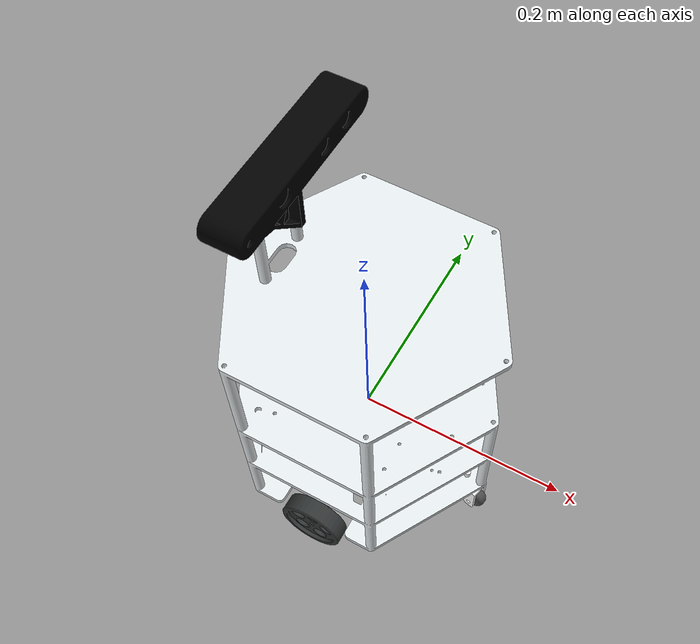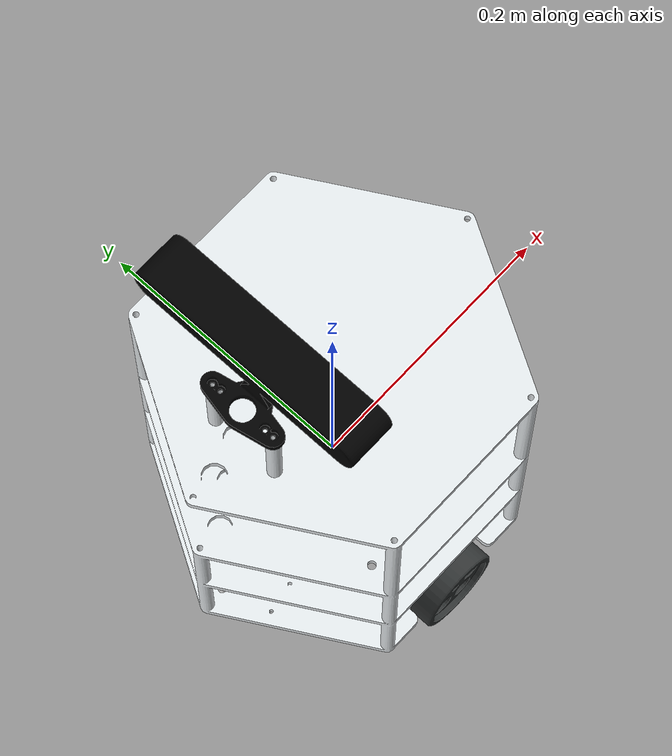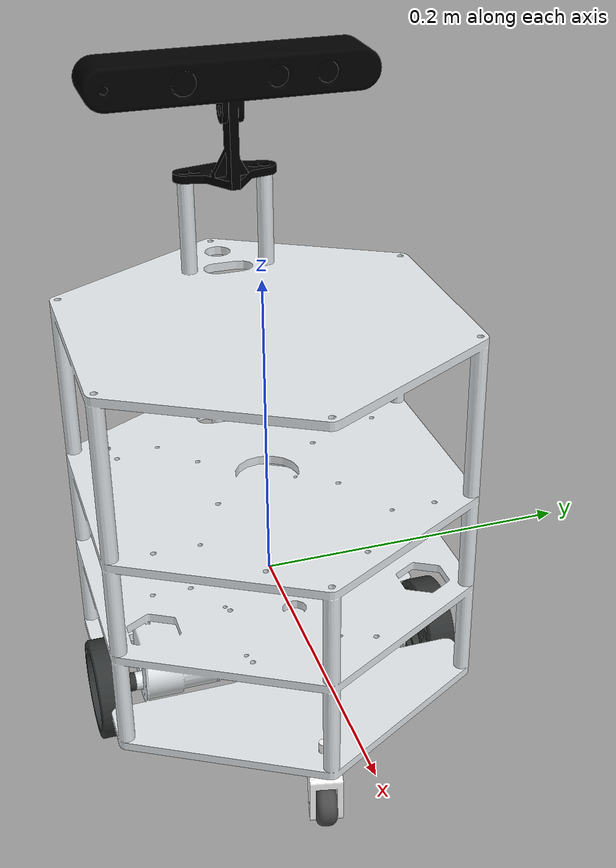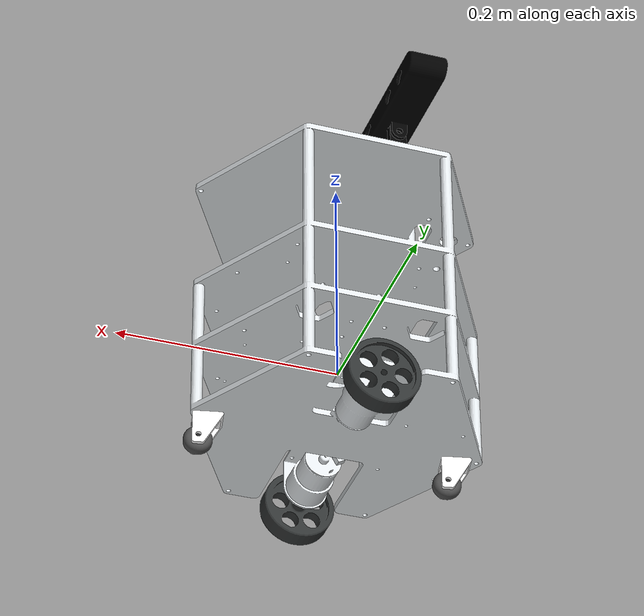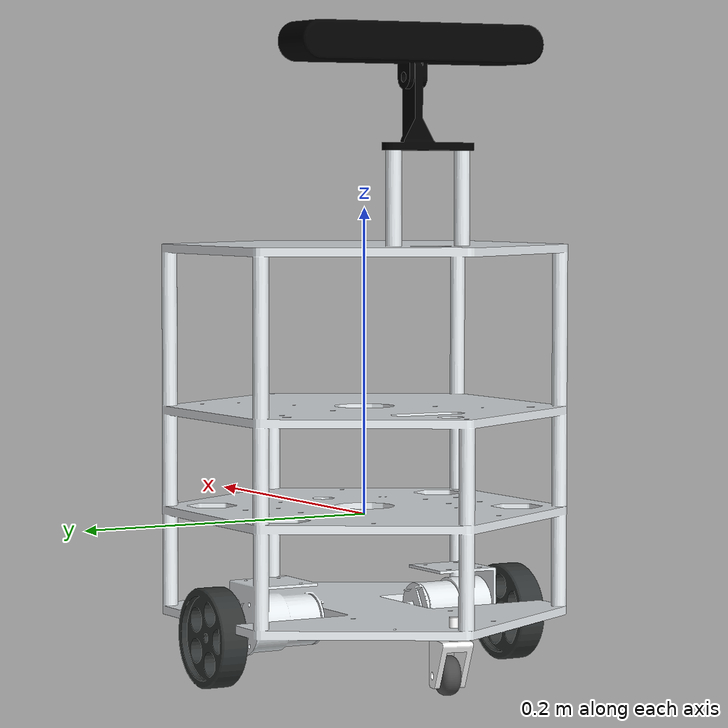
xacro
<?xml version="1.0"?>
<robot name="mrobot_body" xmlns:xacro="http://ros.org/wiki/xacro">

	<link name="base_footprint">
		<visual>
			<origin xyz="0 0 0" rpy="0 0 0" />
			<geometry>
				<box size="0.001 0.001 0.001" />
			</geometry>
			<material name="">
				<color rgba="0 1 1 1" />
			</material>
		</visual>
		<collision>
			<origin xyz="0 0 0" rpy="0 0 0" />
			<geometry>
				<box size="0.001 0.001 0.001" />
			</geometry>
		</collision>
	</link>

	<joint name="base_joint" type="fixed">
			<origin xyz="0 0 0" rpy="0 0 0" />
			<parent link="base_footprint"/>
			<child link="base_link" />
	</joint>

	  <link name="base_link">
    <inertial>
      <origin
        xyz="0.000165827401089777 1.32092585759993E-06 0.0449588297558776"
        rpy="0 0 0" />
      <mass
        value="1.16110991709555" />
      <inertia
        ixx="0.0141882051609444"
        ixy="3.62233523910168E-07"
        ixz="-4.17201487692999E-05"
        iyy="0.0134385266460898"
        iyz="-7.5899226874292E-06"
        izz="0.00936941533097651" />
    </inertial>
    <visual>
      <origin
        xyz="0 0 0"
        rpy="0 0 0" />
      <geometry>
        <mesh
          filename="package://mrobot_description/meshes/base_link.STL" />
      </geometry>
      <material
        name="">
        <color
          rgba="0.898039215686275 0.917647058823529 0.929411764705882 1" />
      </material>
    </visual>
    <collision>
      <origin
        xyz="0 0 0"
        rpy="0 0 0" />
      <geometry>
        <mesh
          filename="package://mrobot_description/meshes/base_link.STL" />
      </geometry>
    </collision>
  </link>
  <link
    name="XtionPro_Link">
    <inertial>
      <origin
        xyz="0.0173089750578809 -7.50819682677935E-05 -0.00364675219943161"
        rpy="0 0 0" />
      <mass
        value="0.162407893054236" />
      <inertia
        ixx="0.000403778164533069"
        ixy="-1.96732545215064E-07"
        ixz="5.35884853146575E-06"
        iyy="5.69834291540739E-05"
        iyz="-1.61775151558225E-08"
        izz="0.000382310464062082" />
    </inertial>
    <visual>
      <origin
        xyz="0 0 0"
        rpy="0 0 0" />
      <geometry>
        <mesh
          filename="package://mrobot_description/meshes/XtionPro_Link.STL" />
      </geometry>
      <material
        name="">
        <color
          rgba="0 0 0 1" />
      </material>
    </visual>
    <collision>
      <origin
        xyz="0 0 0"
        rpy="0 0 0" />
      <geometry>
        <mesh
          filename="package://mrobot_description/meshes/XtionPro_Link.STL" />
      </geometry>
    </collision>
  </link>
  <joint
    name="XtionPro_Joint"
    type="continuous">
    <origin
      xyz="-0.0787933761151307 5.00000000054237E-05 0.3042"
      rpy="1.03941160890147E-16 -2.22044604925031E-16 -2.7254780997982E-17" />
    <parent
      link="base_link" />
    <child
      link="XtionPro_Link" />
    <axis
      xyz="0 0 -1" />
  </joint>
  <link
    name="L_Wheel_Link">
    <inertial>
      <origin
        xyz="8.7822128806314E-06 0.0175843325216576 4.01615191103488E-08"
        rpy="0 0 0" />
      <mass
        value="0.0301589044589903" />
      <inertia
        ixx="1.0477264259799E-05"
        ixy="-1.41957116787247E-09"
        ixz="-5.34801581187301E-12"
        iyy="1.95673216194963E-05"
        iyz="-1.4110271810981E-11"
        izz="1.04767226180504E-05" />
    </inertial>
    <visual>
      <origin
        xyz="0 0 0"
        rpy="0 0 0" />
      <geometry>
        <mesh
          filename="package://mrobot_description/meshes/L_Wheel_Link.STL" />
      </geometry>
      <material
        name="">
        <color
          rgba="0.192156862745098 0.203921568627451 0.203921568627451 1" />
      </material>
    </visual>
    <collision>
      <origin
        xyz="0 0 0"
        rpy="0 0 0" />
      <geometry>
        <mesh
          filename="package://mrobot_description/meshes/L_Wheel_Link.STL" />
      </geometry>
    </collision>
  </link>
  <joint
    name="L_Wheel_Joint"
    type="continuous">
    <origin
      xyz="0 0.0932 -0.073"
      rpy="-8.14483616971169E-17 5.79506885336787E-17 1.73046914505008E-16" />
    <parent
      link="base_link" />
    <child
      link="L_Wheel_Link" />
    <axis
      xyz="0 1 0" />
  </joint>
  <link
    name="R_Wheel_Link">
    <inertial>
      <origin
        xyz="7.55560646877173E-06 -0.0175843325216576 2.90944490236034E-06"
        rpy="0 0 0" />
      <mass
        value="0.0301589044589903" />
      <inertia
        ixx="1.04769865623321E-05"
        ixy="9.91082156776263E-10"
        ixz="-2.70786372820667E-10"
        iyy="1.95673216194963E-05"
        iyz="1.01643374547431E-09"
        izz="1.04770003155173E-05" />
    </inertial>
    <visual>
      <origin
        xyz="0 0 0"
        rpy="0 0 0" />
      <geometry>
        <mesh
          filename="package://mrobot_description/meshes/R_Wheel_Link.STL" />
      </geometry>
      <material
        name="">
        <color
          rgba="0.192156862745098 0.203921568627451 0.203921568627451 1" />
      </material>
    </visual>
    <collision>
      <origin
        xyz="0 0 0"
        rpy="0 0 0" />
      <geometry>
        <mesh
          filename="package://mrobot_description/meshes/R_Wheel_Link.STL" />
      </geometry>
    </collision>
  </link>
  <joint
    name="R_Wheel_Joint"
    type="continuous">
    <origin
      xyz="0 -0.0932000000000001 -0.0712"
      rpy="0 0 -1.04508841651281E-16" />
    <parent
      link="base_link" />
    <child
      link="R_Wheel_Link" />
    <axis
      xyz="0 1 0" />
  </joint>
  <link
    name="F_Caster_Link">
    <inertial>
      <origin
        xyz="0.00633160699751481 -7.84095011141517E-16 -0.0233754297605657"
        rpy="0 0 0" />
      <mass
        value="0.006458942084145" />
      <inertia
        ixx="8.51229871059878E-07"
        ixy="7.94093388050907E-23"
        ixz="-1.60292400055274E-07"
        iyy="8.57353144042699E-07"
        iyz="1.14035241748862E-22"
        izz="6.15415248234449E-07" />
    </inertial>
    <visual>
      <origin
        xyz="0 0 0"
        rpy="0 0 0" />
      <geometry>
        <mesh
          filename="package://mrobot_description/meshes/F_Caster_Link.STL" />
      </geometry>
      <material
        name="">
        <color
          rgba="1 1 1 1" />
      </material>
    </visual>
    <collision>
      <origin
        xyz="0 0 0"
        rpy="0 0 0" />
      <geometry>
        <mesh
          filename="package://mrobot_description/meshes/F_Caster_Link.STL" />
      </geometry>
    </collision>
  </link>
  <joint
    name="F_Caster_Joint"
    type="continuous">
    <origin
      xyz="0.112017059221718 0 -0.0535"
      rpy="2.67447454341301E-17 -1.35485287038386E-16 -0.220161696511527" />
    <parent
      link="base_link" />
    <child
      link="F_Caster_Link" />
    <axis
      xyz="0 0 -1" />
  </joint>
  <link
    name="F_Wheel_Link">
    <inertial>
      <origin
        xyz="0.0125000000000001 -7.84095011141517E-16 -0.0173079592567194"
        rpy="0 0 0" />
      <mass
        value="0.00621176171108955" />
      <inertia
        ixx="3.03577949363663E-07"
        ixy="-4.63221143029696E-23"
        ixz="-9.27710660947011E-24"
        iyy="4.5943322401206E-07"
        iyz="-3.14282252567846E-24"
        izz="3.03577949363663E-07" />
    </inertial>
    <visual>
      <origin
        xyz="0 0 0"
        rpy="0 0 0" />
      <geometry>
        <mesh
          filename="package://mrobot_description/meshes/F_Wheel_Link.STL" />
      </geometry>
      <material
        name="">
        <color
          rgba="0.298039215686275 0.298039215686275 0.298039215686275 1" />
      </material>
    </visual>
    <collision>
      <origin
        xyz="0 0 0"
        rpy="0 0 0" />
      <geometry>
        <mesh
          filename="package://mrobot_description/meshes/F_Wheel_Link.STL" />
      </geometry>
    </collision>
  </link>
  <joint
    name="F_Wheel_Joint"
    type="continuous">
    <origin
      xyz="0 0 -0.0211920407432806"
      rpy="6.16297582203915E-33 1.59766411793996E-17 0" />
    <parent
      link="F_Caster_Link" />
    <child
      link="F_Wheel_Link" />
    <axis
      xyz="0 0 -1" />
  </joint>
  <link
    name="B_Caster_Link">
    <inertial>
      <origin
        xyz="0.0061772302028385 -0.00138963095536703 -0.0233754297605657"
        rpy="0 0 0" />
      <mass
        value="0.00645894208414501" />
      <inertia
        ixx="8.51524825324746E-07"
        ixy="-1.31113975718363E-09"
        ixz="-1.56384162076956E-07"
        iyy="8.57058189777832E-07"
        iyz="3.51802127192077E-08"
        izz="6.1541524823445E-07" />
    </inertial>
    <visual>
      <origin
        xyz="0 0 0"
        rpy="0 0 0" />
      <geometry>
        <mesh
          filename="package://mrobot_description/meshes/B_Caster_Link.STL" />
      </geometry>
      <material
        name="">
        <color
          rgba="1 1 1 1" />
      </material>
    </visual>
    <collision>
      <origin
        xyz="0 0 0"
        rpy="0 0 0" />
      <geometry>
        <mesh
          filename="package://mrobot_description/meshes/B_Caster_Link.STL" />
      </geometry>
    </collision>
  </link>
  <joint
    name="B_Caster_Joint"
    type="continuous">
    <origin
      xyz="-0.112017059221718 0 -0.0535"
      rpy="0 0 -1.04508841651281E-16" />
    <parent
      link="base_link" />
    <child
      link="B_Caster_Link" />
    <axis
      xyz="0 0 -1" />
  </joint>
  <link
    name="B_Wheel_Link">
    <inertial>
      <origin
        xyz="0.0124999999999999 6.31439345255558E-16 -0.0173079592567194"
        rpy="0 0 0" />
      <mass
        value="0.00621176171108955" />
      <inertia
        ixx="3.03577949363664E-07"
        ixy="1.32348898008484E-23"
        ixz="5.21243116251773E-24"
        iyy="4.5943322401206E-07"
        iyz="-8.52200215345273E-24"
        izz="3.03577949363663E-07" />
    </inertial>
    <visual>
      <origin
        xyz="0 0 0"
        rpy="0 0 0" />
      <geometry>
        <mesh
          filename="package://mrobot_description/meshes/B_Wheel_Link.STL" />
      </geometry>
      <material
        name="">
        <color
          rgba="0.298039215686275 0.298039215686275 0.298039215686275 1" />
      </material>
    </visual>
    <collision>
      <origin
        xyz="0 0 0"
        rpy="0 0 0" />
      <geometry>
        <mesh
          filename="package://mrobot_description/meshes/B_Wheel_Link.STL" />
      </geometry>
    </collision>
  </link>
  <joint
    name="B_Wheel_Joint"
    type="continuous">
    <origin
      xyz="0 0 -0.0211920407432806"
      rpy="0 0 -0.221276561890748" />
    <parent
      link="B_Caster_Link" />
    <child
      link="B_Wheel_Link" />
    <axis
      xyz="0 0 -1" />
  </joint>

</robot>
